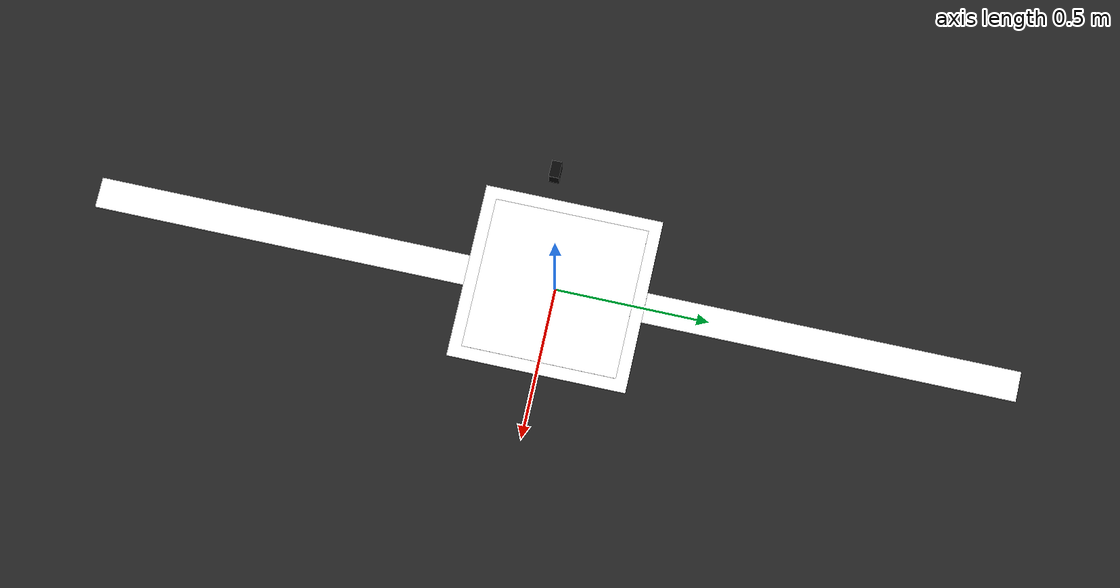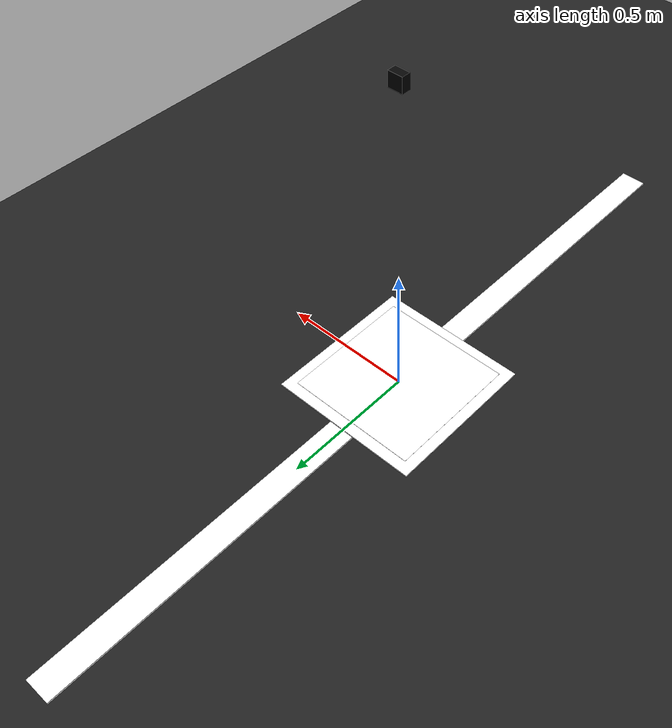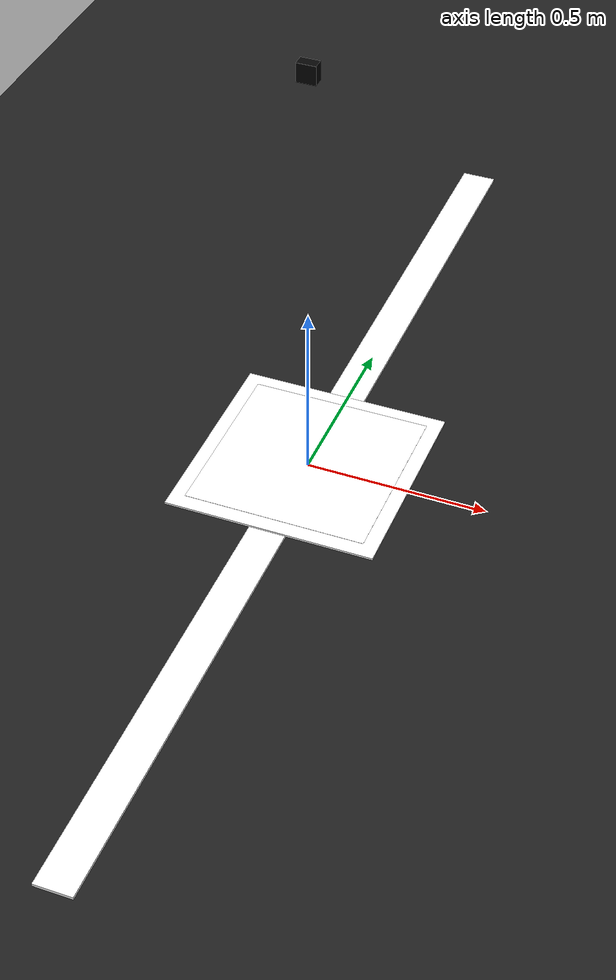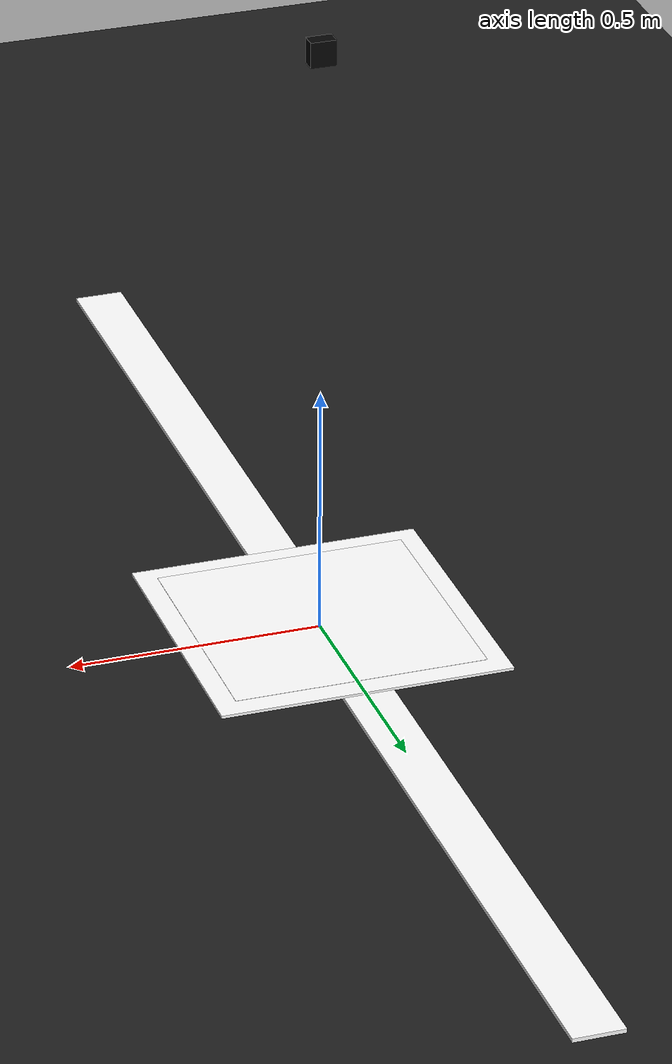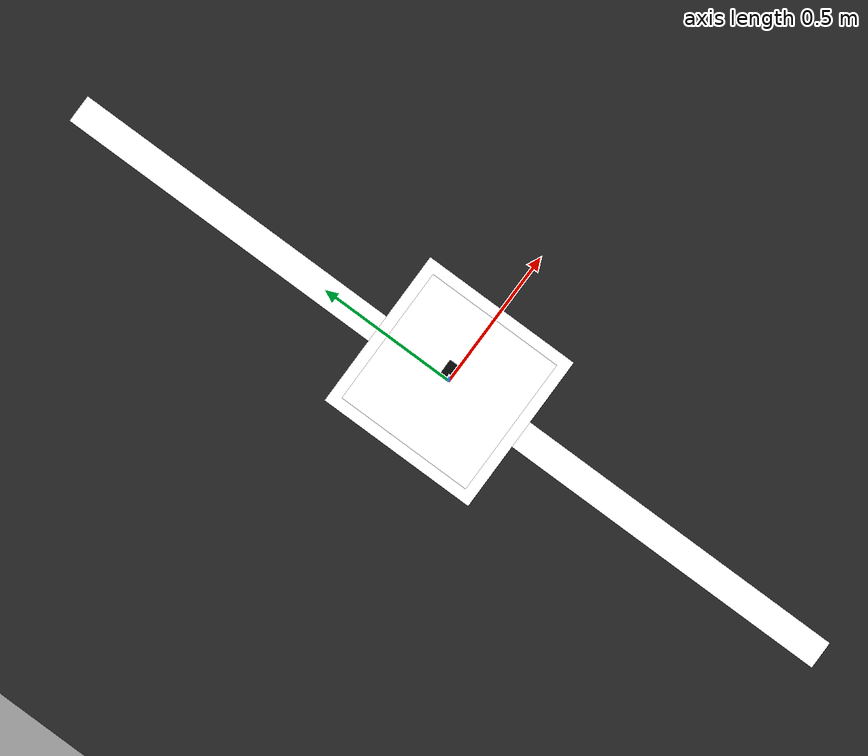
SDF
<?xml version="1.0" ?>
<sdf version="1.9">
  <world name="astroquad_marker_center_fixture">
    <physics name="1ms" type="ignore">
      <max_step_size>0.001</max_step_size>
      <real_time_factor>1.0</real_time_factor>
    </physics>

    <plugin filename="gz-sim-physics-system" name="gz::sim::systems::Physics"/>
    <plugin filename="gz-sim-sensors-system" name="gz::sim::systems::Sensors">
      <render_engine>ogre2</render_engine>
    </plugin>
    <plugin filename="gz-sim-user-commands-system" name="gz::sim::systems::UserCommands"/>
    <plugin filename="gz-sim-scene-broadcaster-system" name="gz::sim::systems::SceneBroadcaster"/>

    <scene>
      <ambient>1.0 1.0 1.0</ambient>
      <background>0.8 0.8 0.8</background>
      <sky/>
    </scene>

    <light type="directional" name="sun">
      <cast_shadows>false</cast_shadows>
      <pose>0 0 10 0 0 0</pose>
      <diffuse>0.9 0.9 0.9 1</diffuse>
      <specular>0.6 0.6 0.6 1</specular>
      <attenuation>
        <range>1000</range>
        <constant>0.9</constant>
        <linear>0.01</linear>
        <quadratic>0.001</quadratic>
      </attenuation>
      <direction>-0.4 0.2 -0.9</direction>
    </light>

    <model name="marker_center_fixture_course">
      <static>true</static>
      <link name="course_link">
        <collision name="ground_collision">
          <geometry>
            <plane>
              <normal>0 0 1</normal>
              <size>8 8</size>
            </plane>
          </geometry>
        </collision>
        <visual name="ground_visual">
          <geometry>
            <plane>
              <normal>0 0 1</normal>
              <size>8 8</size>
            </plane>
          </geometry>
          <material>
            <ambient>0.12 0.12 0.12 1</ambient>
            <diffuse>0.12 0.12 0.12 1</diffuse>
          </material>
        </visual>
        <visual name="white_line_10cm">
          <pose>0 0 0.006 0 0 0</pose>
          <geometry>
            <box>
              <size>0.10 3.0 0.008</size>
            </box>
          </geometry>
          <material>
            <ambient>1 1 1 1</ambient>
            <diffuse>1 1 1 1</diffuse>
            <emissive>0.25 0.25 0.25 1</emissive>
          </material>
        </visual>
        <visual name="marker_id1_white_backing">
          <pose>0 0 0.012 0 0 0</pose>
          <geometry>
            <box>
              <size>0.58 0.58 0.006</size>
            </box>
          </geometry>
          <material>
            <ambient>1 1 1 1</ambient>
            <diffuse>1 1 1 1</diffuse>
          </material>
        </visual>
        <visual name="marker_id1_texture">
          <pose>0 0 0.018 0 0 0</pose>
          <geometry>
            <plane>
              <normal>0 0 1</normal>
              <size>0.50 0.50</size>
            </plane>
          </geometry>
          <material>
            <ambient>1 1 1 1</ambient>
            <diffuse>1 1 1 1</diffuse>
            <specular>0 0 0 1</specular>
            <pbr>
              <metal>
                <albedo_map>model://line_tracing_course/materials/textures/aruco_id1.png</albedo_map>
                <roughness>1.0</roughness>
                <metalness>0.0</metalness>
              </metal>
            </pbr>
          </material>
        </visual>
      </link>
    </model>

    <include>
      <uri>model://astroquad_static_downward_camera</uri>
    </include>
  </world>
</sdf>

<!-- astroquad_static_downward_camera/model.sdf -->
<sdf version="1.9">
  <model name="astroquad_static_downward_camera">
    <static>true</static>
    <link name="downward_camera_link">
      <pose>0 0 1.20 0 1.57079632679 1.57079632679</pose>
      <visual name="camera_visual">
        <geometry>
          <box>
            <size>0.05 0.05 0.03</size>
          </box>
        </geometry>
        <material>
          <ambient>0.02 0.02 0.02 1</ambient>
          <diffuse>0.02 0.02 0.02 1</diffuse>
        </material>
      </visual>
      <sensor name="downward_camera" type="camera">
        <camera>
          <horizontal_fov>2.2</horizontal_fov>
          <image>
            <width>640</width>
            <height>480</height>
            <!-- L8 mono matches the real IMX296 global-shutter camera. -->
            <format>L8</format>
          </image>
          <clip>
            <near>0.05</near>
            <far>20</far>
          </clip>
        </camera>
        <always_on>true</always_on>
        <update_rate>24</update_rate>
        <visualize>true</visualize>
      </sensor>
    </link>
  </model>
</sdf>
